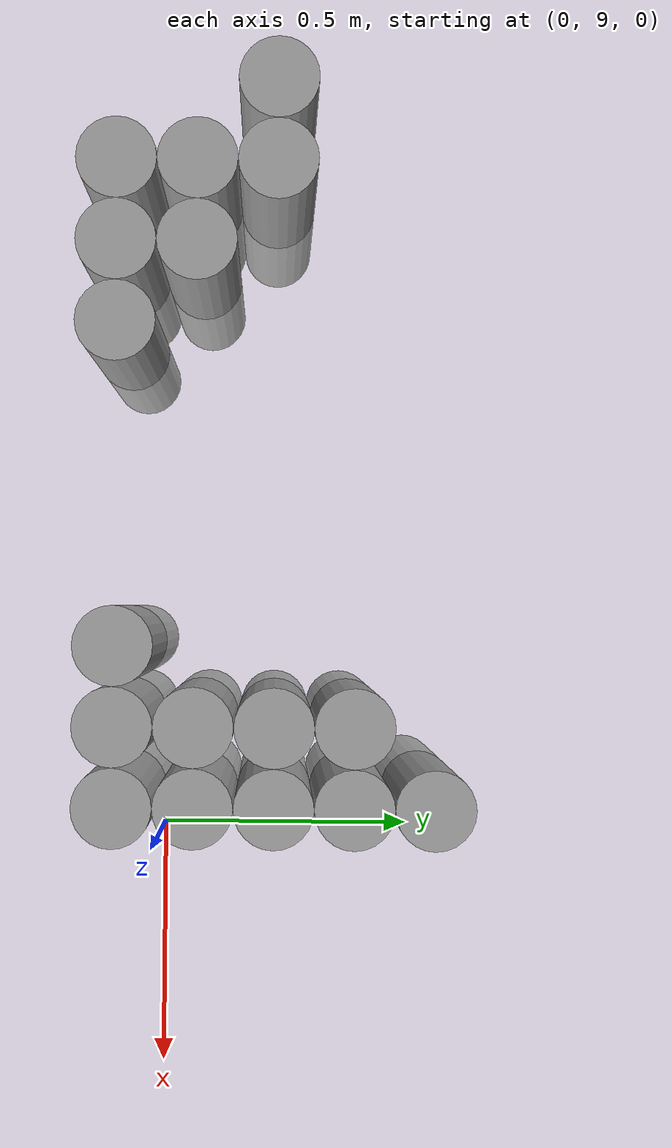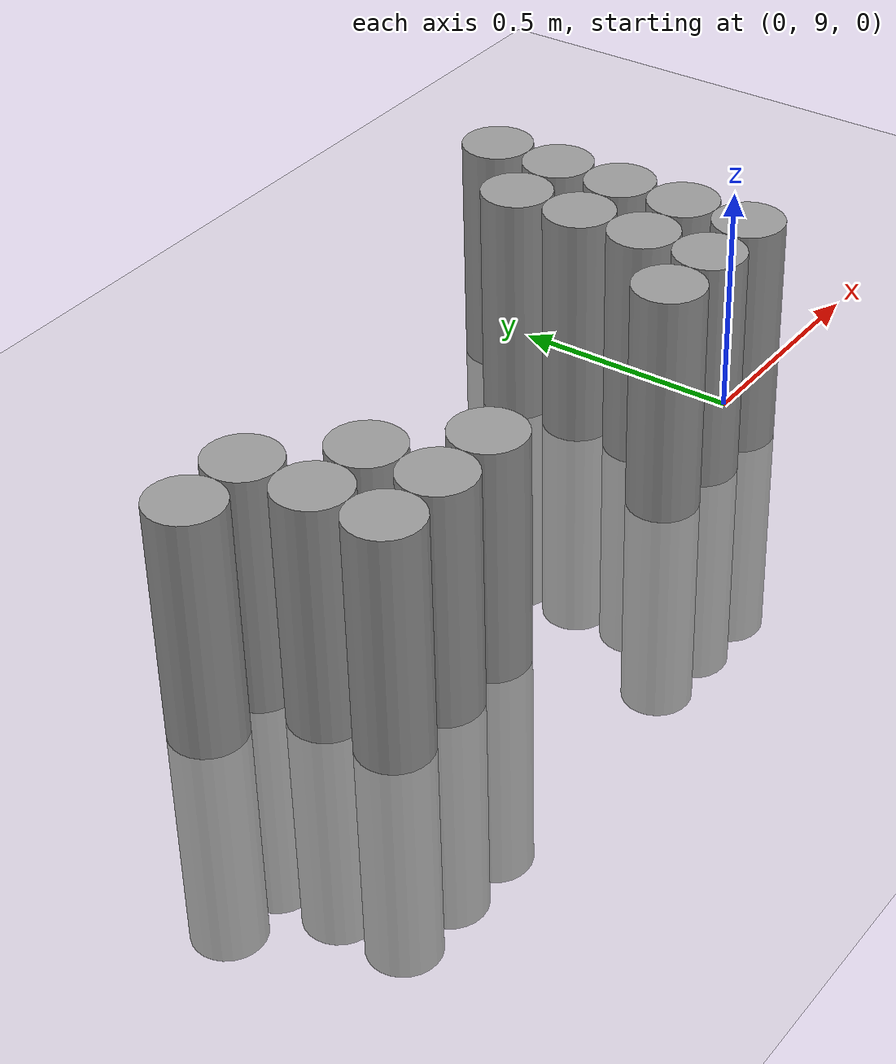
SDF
<sdf version="1.6">
 <world name="default">
  <model name="ground_plane">
   <static>1</static>
   <static>1</static>
   <link name="link">
    <collision name="collision">
     <geometry><plane><normal>0 0 1</normal><size>100 100</size></plane></geometry>
     <surface><friction><ode><mu>100</mu><mu2>50</mu2></ode></friction></surface>
    </collision>
    <visual name="visual">
     <cast_shadows>0</cast_shadows>
     <geometry><plane><normal>0 0 1</normal><size>100 100</size></plane></geometry>
     <material>
      <script><uri>file://media/materials/scripts/gazebo.material</uri><name>Gazebo/Grey</name></script>
     </material>
    </visual>
   </link>
  </model>
  <model name="unit_cylinder_185">
   <static>1</static>
   <pose>-1.425000 9.225000 0.000000 0.000000 0.000000 0.000000</pose>
   <link name="link">
    <inertial>
     <mass>1</mass>
     <inertia><ixx>0.145833</ixx><ixy>0</ixy><ixz>0</ixz><iyy>0.145833</iyy><iyz>0</iyz><izz>0.125</izz></inertia>
    </inertial>
    <collision name="collision">
     <geometry><cylinder><radius>0.075000</radius><length>1</length></cylinder></geometry>
    </collision>
    <visual name="visual">
     <geometry><cylinder><radius>0.075000</radius><length>1</length></cylinder></geometry>
     <material>
      <script><name>Gazebo/Grey</name><uri>file://media/materials/scripts/gazebo.material</uri></script>
     </material>
    </visual>
   </link>
  </model>
  <model name="unit_cylinder_187">
   <static>1</static>
   <pose>-1.275000 8.925000 0.000000 0.000000 0.000000 0.000000</pose>
   <link name="link">
    <inertial>
     <mass>1</mass>
     <inertia><ixx>0.145833</ixx><ixy>0</ixy><ixz>0</ixz><iyy>0.145833</iyy><iyz>0</iyz><izz>0.125</izz></inertia>
    </inertial>
    <collision name="collision">
     <geometry><cylinder><radius>0.075000</radius><length>1</length></cylinder></geometry>
    </collision>
    <visual name="visual">
     <geometry><cylinder><radius>0.075000</radius><length>1</length></cylinder></geometry>
     <material>
      <script><name>Gazebo/Grey</name><uri>file://media/materials/scripts/gazebo.material</uri></script>
     </material>
    </visual>
   </link>
  </model>
  <model name="unit_cylinder_188">
   <static>1</static>
   <pose>-1.275000 9.075000 0.000000 0.000000 0.000000 0.000000</pose>
   <link name="link">
    <inertial>
     <mass>1</mass>
     <inertia><ixx>0.145833</ixx><ixy>0</ixy><ixz>0</ixz><iyy>0.145833</iyy><iyz>0</iyz><izz>0.125</izz></inertia>
    </inertial>
    <collision name="collision">
     <geometry><cylinder><radius>0.075000</radius><length>1</length></cylinder></geometry>
    </collision>
    <visual name="visual">
     <geometry><cylinder><radius>0.075000</radius><length>1</length></cylinder></geometry>
     <material>
      <script><name>Gazebo/Grey</name><uri>file://media/materials/scripts/gazebo.material</uri></script>
     </material>
    </visual>
   </link>
  </model>
  <model name="unit_cylinder_189">
   <static>1</static>
   <pose>-1.275000 9.225000 0.000000 0.000000 0.000000 0.000000</pose>
   <link name="link">
    <inertial>
     <mass>1</mass>
     <inertia><ixx>0.145833</ixx><ixy>0</ixy><ixz>0</ixz><iyy>0.145833</iyy><iyz>0</iyz><izz>0.125</izz></inertia>
    </inertial>
    <collision name="collision">
     <geometry><cylinder><radius>0.075000</radius><length>1</length></cylinder></geometry>
    </collision>
    <visual name="visual">
     <geometry><cylinder><radius>0.075000</radius><length>1</length></cylinder></geometry>
     <material>
      <script><name>Gazebo/Grey</name><uri>file://media/materials/scripts/gazebo.material</uri></script>
     </material>
    </visual>
   </link>
  </model>
  <model name="unit_cylinder_191">
   <static>1</static>
   <pose>-1.125000 8.925000 0.000000 0.000000 0.000000 0.000000</pose>
   <link name="link">
    <inertial>
     <mass>1</mass>
     <inertia><ixx>0.145833</ixx><ixy>0</ixy><ixz>0</ixz><iyy>0.145833</iyy><iyz>0</iyz><izz>0.125</izz></inertia>
    </inertial>
    <collision name="collision">
     <geometry><cylinder><radius>0.075000</radius><length>1</length></cylinder></geometry>
    </collision>
    <visual name="visual">
     <geometry><cylinder><radius>0.075000</radius><length>1</length></cylinder></geometry>
     <material>
      <script><name>Gazebo/Grey</name><uri>file://media/materials/scripts/gazebo.material</uri></script>
     </material>
    </visual>
   </link>
  </model>
  <model name="unit_cylinder_192">
   <static>1</static>
   <pose>-1.125000 9.075000 0.000000 0.000000 0.000000 0.000000</pose>
   <link name="link">
    <inertial>
     <mass>1</mass>
     <inertia><ixx>0.145833</ixx><ixy>0</ixy><ixz>0</ixz><iyy>0.145833</iyy><iyz>0</iyz><izz>0.125</izz></inertia>
    </inertial>
    <collision name="collision">
     <geometry><cylinder><radius>0.075000</radius><length>1</length></cylinder></geometry>
    </collision>
    <visual name="visual">
     <geometry><cylinder><radius>0.075000</radius><length>1</length></cylinder></geometry>
     <material>
      <script><name>Gazebo/Grey</name><uri>file://media/materials/scripts/gazebo.material</uri></script>
     </material>
    </visual>
   </link>
  </model>
  <model name="unit_cylinder_196">
   <static>1</static>
   <pose>-0.975000 8.925000 0.000000 0.000000 0.000000 0.000000</pose>
   <link name="link">
    <inertial>
     <mass>1</mass>
     <inertia><ixx>0.145833</ixx><ixy>0</ixy><ixz>0</ixz><iyy>0.145833</iyy><iyz>0</iyz><izz>0.125</izz></inertia>
    </inertial>
    <collision name="collision">
     <geometry><cylinder><radius>0.075000</radius><length>1</length></cylinder></geometry>
    </collision>
    <visual name="visual">
     <geometry><cylinder><radius>0.075000</radius><length>1</length></cylinder></geometry>
     <material>
      <script><name>Gazebo/Grey</name><uri>file://media/materials/scripts/gazebo.material</uri></script>
     </material>
    </visual>
   </link>
  </model>
  <model name="unit_cylinder_215">
   <static>1</static>
   <pose>-0.375000 8.925000 0.000000 0.000000 0.000000 0.000000</pose>
   <link name="link">
    <inertial>
     <mass>1</mass>
     <inertia><ixx>0.145833</ixx><ixy>0</ixy><ixz>0</ixz><iyy>0.145833</iyy><iyz>0</iyz><izz>0.125</izz></inertia>
    </inertial>
    <collision name="collision">
     <geometry><cylinder><radius>0.075000</radius><length>1</length></cylinder></geometry>
    </collision>
    <visual name="visual">
     <geometry><cylinder><radius>0.075000</radius><length>1</length></cylinder></geometry>
     <material>
      <script><name>Gazebo/Grey</name><uri>file://media/materials/scripts/gazebo.material</uri></script>
     </material>
    </visual>
   </link>
  </model>
  <model name="unit_cylinder_225">
   <static>1</static>
   <pose>-0.225000 8.925000 0.000000 0.000000 0.000000 0.000000</pose>
   <link name="link">
    <inertial>
     <mass>1</mass>
     <inertia><ixx>0.145833</ixx><ixy>0</ixy><ixz>0</ixz><iyy>0.145833</iyy><iyz>0</iyz><izz>0.125</izz></inertia>
    </inertial>
    <collision name="collision">
     <geometry><cylinder><radius>0.075000</radius><length>1</length></cylinder></geometry>
    </collision>
    <visual name="visual">
     <geometry><cylinder><radius>0.075000</radius><length>1</length></cylinder></geometry>
     <material>
      <script><name>Gazebo/Grey</name><uri>file://media/materials/scripts/gazebo.material</uri></script>
     </material>
    </visual>
   </link>
  </model>
  <model name="unit_cylinder_226">
   <static>1</static>
   <pose>-0.225000 9.075000 0.000000 0.000000 0.000000 0.000000</pose>
   <link name="link">
    <inertial>
     <mass>1</mass>
     <inertia><ixx>0.145833</ixx><ixy>0</ixy><ixz>0</ixz><iyy>0.145833</iyy><iyz>0</iyz><izz>0.125</izz></inertia>
    </inertial>
    <collision name="collision">
     <geometry><cylinder><radius>0.075000</radius><length>1</length></cylinder></geometry>
    </collision>
    <visual name="visual">
     <geometry><cylinder><radius>0.075000</radius><length>1</length></cylinder></geometry>
     <material>
      <script><name>Gazebo/Grey</name><uri>file://media/materials/scripts/gazebo.material</uri></script>
     </material>
    </visual>
   </link>
  </model>
  <model name="unit_cylinder_227">
   <static>1</static>
   <pose>-0.225000 9.225000 0.000000 0.000000 0.000000 0.000000</pose>
   <link name="link">
    <inertial>
     <mass>1</mass>
     <inertia><ixx>0.145833</ixx><ixy>0</ixy><ixz>0</ixz><iyy>0.145833</iyy><iyz>0</iyz><izz>0.125</izz></inertia>
    </inertial>
    <collision name="collision">
     <geometry><cylinder><radius>0.075000</radius><length>1</length></cylinder></geometry>
    </collision>
    <visual name="visual">
     <geometry><cylinder><radius>0.075000</radius><length>1</length></cylinder></geometry>
     <material>
      <script><name>Gazebo/Grey</name><uri>file://media/materials/scripts/gazebo.material</uri></script>
     </material>
    </visual>
   </link>
  </model>
  <model name="unit_cylinder_228">
   <static>1</static>
   <pose>-0.225000 9.375000 0.000000 0.000000 0.000000 0.000000</pose>
   <link name="link">
    <inertial>
     <mass>1</mass>
     <inertia><ixx>0.145833</ixx><ixy>0</ixy><ixz>0</ixz><iyy>0.145833</iyy><iyz>0</iyz><izz>0.125</izz></inertia>
    </inertial>
    <collision name="collision">
     <geometry><cylinder><radius>0.075000</radius><length>1</length></cylinder></geometry>
    </collision>
    <visual name="visual">
     <geometry><cylinder><radius>0.075000</radius><length>1</length></cylinder></geometry>
     <material>
      <script><name>Gazebo/Grey</name><uri>file://media/materials/scripts/gazebo.material</uri></script>
     </material>
    </visual>
   </link>
  </model>
  <model name="unit_cylinder_254">
   <static>1</static>
   <pose>-0.075000 8.925000 0.000000 0.000000 0.000000 0.000000</pose>
   <link name="link">
    <inertial>
     <mass>1</mass>
     <inertia><ixx>0.145833</ixx><ixy>0</ixy><ixz>0</ixz><iyy>0.145833</iyy><iyz>0</iyz><izz>0.125</izz></inertia>
    </inertial>
    <collision name="collision">
     <geometry><cylinder><radius>0.075000</radius><length>1</length></cylinder></geometry>
    </collision>
    <visual name="visual">
     <geometry><cylinder><radius>0.075000</radius><length>1</length></cylinder></geometry>
     <material>
      <script><name>Gazebo/Grey</name><uri>file://media/materials/scripts/gazebo.material</uri></script>
     </material>
    </visual>
   </link>
  </model>
  <model name="unit_cylinder_255">
   <static>1</static>
   <pose>-0.075000 9.075000 0.000000 0.000000 0.000000 0.000000</pose>
   <link name="link">
    <inertial>
     <mass>1</mass>
     <inertia><ixx>0.145833</ixx><ixy>0</ixy><ixz>0</ixz><iyy>0.145833</iyy><iyz>0</iyz><izz>0.125</izz></inertia>
    </inertial>
    <collision name="collision">
     <geometry><cylinder><radius>0.075000</radius><length>1</length></cylinder></geometry>
    </collision>
    <visual name="visual">
     <geometry><cylinder><radius>0.075000</radius><length>1</length></cylinder></geometry>
     <material>
      <script><name>Gazebo/Grey</name><uri>file://media/materials/scripts/gazebo.material</uri></script>
     </material>
    </visual>
   </link>
  </model>
  <model name="unit_cylinder_256">
   <static>1</static>
   <pose>-0.075000 9.225000 0.000000 0.000000 0.000000 0.000000</pose>
   <link name="link">
    <inertial>
     <mass>1</mass>
     <inertia><ixx>0.145833</ixx><ixy>0</ixy><ixz>0</ixz><iyy>0.145833</iyy><iyz>0</iyz><izz>0.125</izz></inertia>
    </inertial>
    <collision name="collision">
     <geometry><cylinder><radius>0.075000</radius><length>1</length></cylinder></geometry>
    </collision>
    <visual name="visual">
     <geometry><cylinder><radius>0.075000</radius><length>1</length></cylinder></geometry>
     <material>
      <script><name>Gazebo/Grey</name><uri>file://media/materials/scripts/gazebo.material</uri></script>
     </material>
    </visual>
   </link>
  </model>
  <model name="unit_cylinder_257">
   <static>1</static>
   <pose>-0.075000 9.375000 0.000000 0.000000 0.000000 0.000000</pose>
   <link name="link">
    <inertial>
     <mass>1</mass>
     <inertia><ixx>0.145833</ixx><ixy>0</ixy><ixz>0</ixz><iyy>0.145833</iyy><iyz>0</iyz><izz>0.125</izz></inertia>
    </inertial>
    <collision name="collision">
     <geometry><cylinder><radius>0.075000</radius><length>1</length></cylinder></geometry>
    </collision>
    <visual name="visual">
     <geometry><cylinder><radius>0.075000</radius><length>1</length></cylinder></geometry>
     <material>
      <script><name>Gazebo/Grey</name><uri>file://media/materials/scripts/gazebo.material</uri></script>
     </material>
    </visual>
   </link>
  </model>
  <model name="unit_cylinder_258">
   <static>1</static>
   <pose>-0.075000 9.525000 0.000000 0.000000 0.000000 0.000000</pose>
   <link name="link">
    <inertial>
     <mass>1</mass>
     <inertia><ixx>0.145833</ixx><ixy>0</ixy><ixz>0</ixz><iyy>0.145833</iyy><iyz>0</iyz><izz>0.125</izz></inertia>
    </inertial>
    <collision name="collision">
     <geometry><cylinder><radius>0.075000</radius><length>1</length></cylinder></geometry>
    </collision>
    <visual name="visual">
     <geometry><cylinder><radius>0.075000</radius><length>1</length></cylinder></geometry>
     <material>
      <script><name>Gazebo/Grey</name><uri>file://media/materials/scripts/gazebo.material</uri></script>
     </material>
    </visual>
   </link>
  </model>
 </world>
</sdf>
